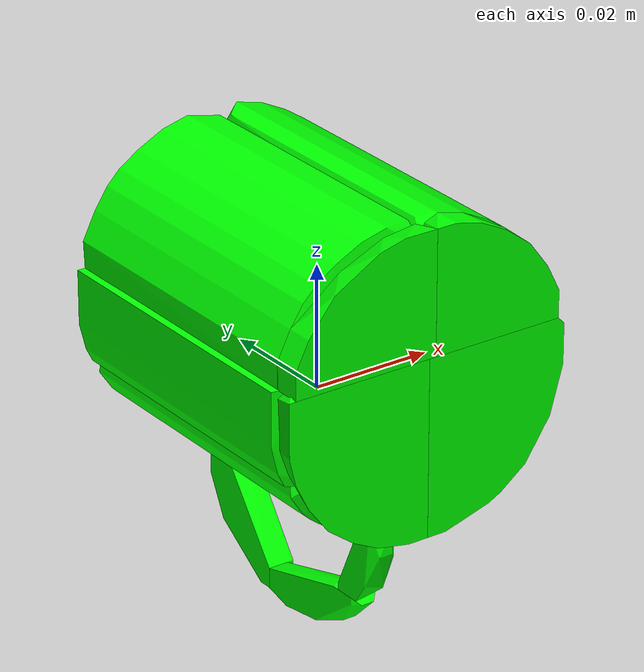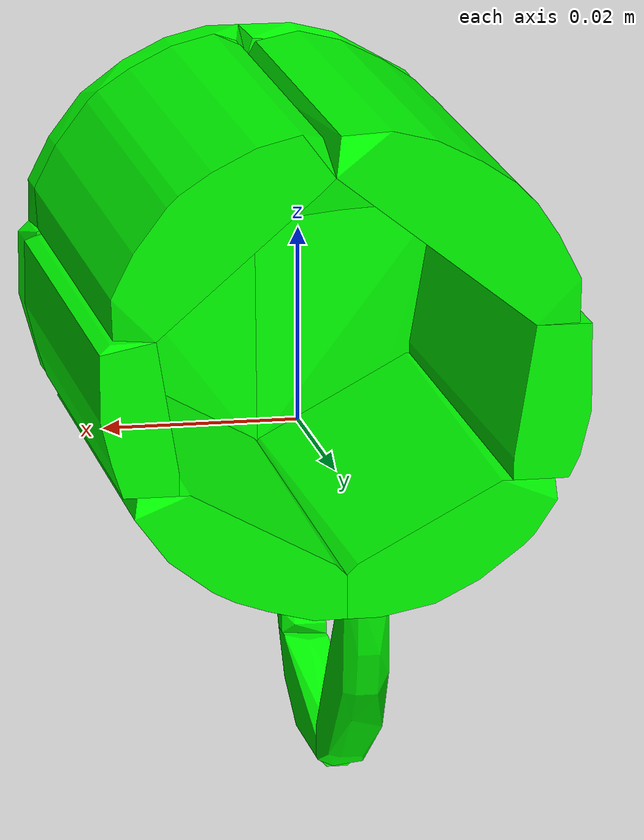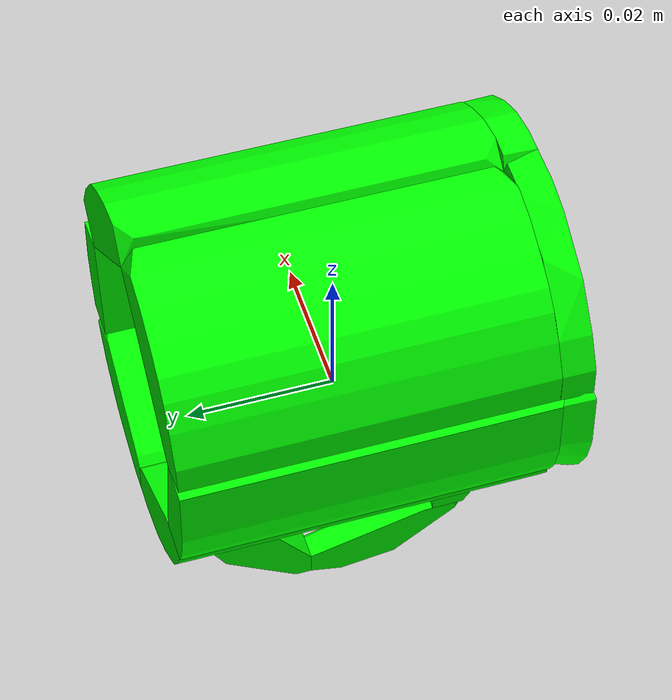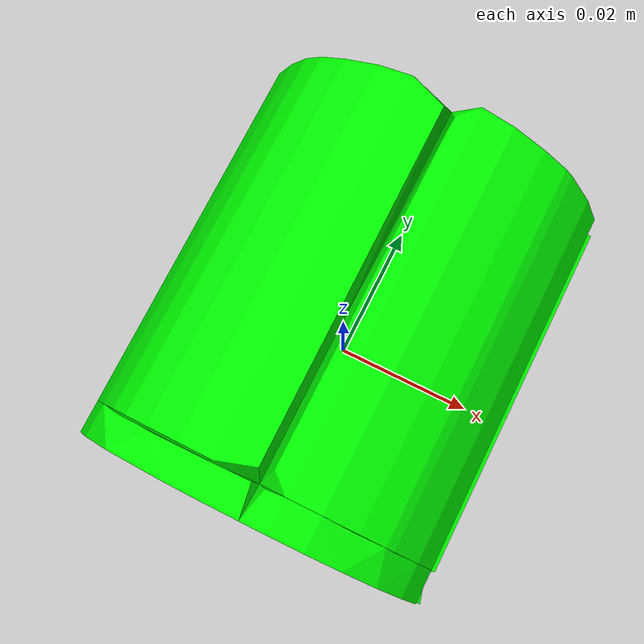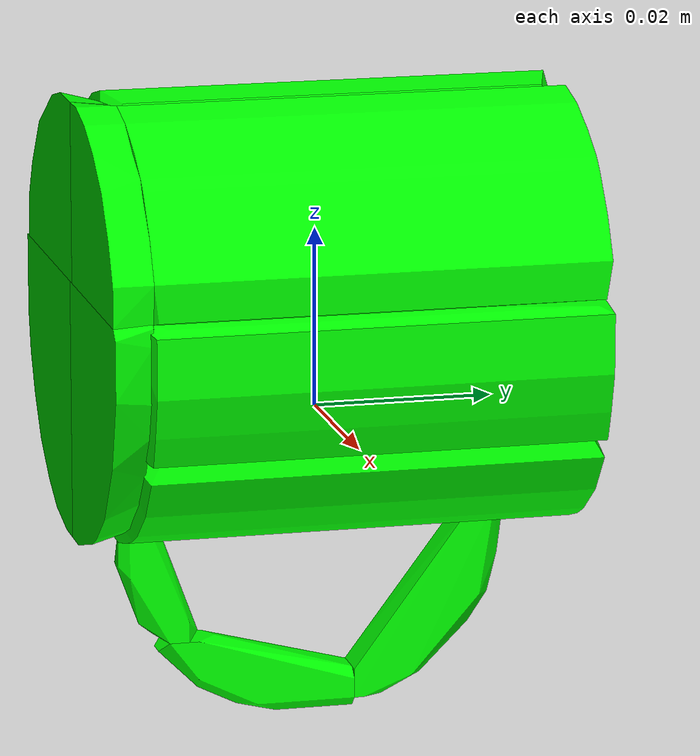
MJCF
<mujoco model="shapenet9-23">
  <asset>
    <mesh file="meshes/shapenet9-23/shapenet9-23_0.stl" name="shapenet9-23_0" scale="0.1 0.1 0.1"/>
    <mesh file="meshes/shapenet9-23/shapenet9-23_1.stl" name="shapenet9-23_1" scale="0.1 0.1 0.1"/>
    <mesh file="meshes/shapenet9-23/shapenet9-23_2.stl" name="shapenet9-23_2" scale="0.1 0.1 0.1"/>
    <mesh file="meshes/shapenet9-23/shapenet9-23_3.stl" name="shapenet9-23_3" scale="0.1 0.1 0.1"/>
    <mesh file="meshes/shapenet9-23/shapenet9-23_4.stl" name="shapenet9-23_4" scale="0.1 0.1 0.1"/>
    <mesh file="meshes/shapenet9-23/shapenet9-23_5.stl" name="shapenet9-23_5" scale="0.1 0.1 0.1"/>
    <mesh file="meshes/shapenet9-23/shapenet9-23_6.stl" name="shapenet9-23_6" scale="0.1 0.1 0.1"/>
    <mesh file="meshes/shapenet9-23/shapenet9-23_7.stl" name="shapenet9-23_7" scale="0.1 0.1 0.1"/>
    <mesh file="meshes/shapenet9-23/shapenet9-23_8.stl" name="shapenet9-23_8" scale="0.1 0.1 0.1"/>
    <mesh file="meshes/shapenet9-23/shapenet9-23_9.stl" name="shapenet9-23_9" scale="0.1 0.1 0.1"/>
    <mesh file="meshes/shapenet9-23/shapenet9-23_10.stl" name="shapenet9-23_10" scale="0.1 0.1 0.1"/>
    <mesh file="meshes/shapenet9-23/shapenet9-23_11.stl" name="shapenet9-23_11" scale="0.1 0.1 0.1"/>
    <mesh file="meshes/shapenet9-23/shapenet9-23_12.stl" name="shapenet9-23_12" scale="0.1 0.1 0.1"/>
  </asset>
  <worldbody>
    <body>
      <body name="collision">
        <geom pos="0 0 0" mesh="shapenet9-23_0" type="mesh" solimp="0.998 0.998 0.001" solref="0.001 1" density="100" friction="0.95 0.3 0.1" rgba="0 1 0 1" group="1" condim="4"/>
        <geom pos="0 0 0" mesh="shapenet9-23_1" type="mesh" solimp="0.998 0.998 0.001" solref="0.001 1" density="100" friction="0.95 0.3 0.1" rgba="0 1 0 1" group="1" condim="4"/>
        <geom pos="0 0 0" mesh="shapenet9-23_2" type="mesh" solimp="0.998 0.998 0.001" solref="0.001 1" density="100" friction="0.95 0.3 0.1" rgba="0 1 0 1" group="1" condim="4"/>
        <geom pos="0 0 0" mesh="shapenet9-23_3" type="mesh" solimp="0.998 0.998 0.001" solref="0.001 1" density="100" friction="0.95 0.3 0.1" rgba="0 1 0 1" group="1" condim="4"/>
        <geom pos="0 0 0" mesh="shapenet9-23_4" type="mesh" solimp="0.998 0.998 0.001" solref="0.001 1" density="100" friction="0.95 0.3 0.1" rgba="0 1 0 1" group="1" condim="4"/>
        <geom pos="0 0 0" mesh="shapenet9-23_5" type="mesh" solimp="0.998 0.998 0.001" solref="0.001 1" density="100" friction="0.95 0.3 0.1" rgba="0 1 0 1" group="1" condim="4"/>
        <geom pos="0 0 0" mesh="shapenet9-23_6" type="mesh" solimp="0.998 0.998 0.001" solref="0.001 1" density="100" friction="0.95 0.3 0.1" rgba="0 1 0 1" group="1" condim="4"/>
        <geom pos="0 0 0" mesh="shapenet9-23_7" type="mesh" solimp="0.998 0.998 0.001" solref="0.001 1" density="100" friction="0.95 0.3 0.1" rgba="0 1 0 1" group="1" condim="4"/>
        <geom pos="0 0 0" mesh="shapenet9-23_8" type="mesh" solimp="0.998 0.998 0.001" solref="0.001 1" density="100" friction="0.95 0.3 0.1" rgba="0 1 0 1" group="1" condim="4"/>
        <geom pos="0 0 0" mesh="shapenet9-23_9" type="mesh" solimp="0.998 0.998 0.001" solref="0.001 1" density="100" friction="0.95 0.3 0.1" rgba="0 1 0 1" group="1" condim="4"/>
        <geom pos="0 0 0" mesh="shapenet9-23_10" type="mesh" solimp="0.998 0.998 0.001" solref="0.001 1" density="100" friction="0.95 0.3 0.1" rgba="0 1 0 1" group="1" condim="4"/>
        <geom pos="0 0 0" mesh="shapenet9-23_11" type="mesh" solimp="0.998 0.998 0.001" solref="0.001 1" density="100" friction="0.95 0.3 0.1" rgba="0 1 0 1" group="1" condim="4"/>
        <geom pos="0 0 0" mesh="shapenet9-23_12" type="mesh" solimp="0.998 0.998 0.001" solref="0.001 1" density="100" friction="0.95 0.3 0.1" rgba="0 1 0 1" group="1" condim="4"/>
      </body>
      <body name="visual">
        <geom pos="0 0 0" mesh="shapenet9-23_0" type="mesh" rgba="0 1 0 1" conaffinity="0" contype="0" group="0" mass="0.0001"/>
        <geom pos="0 0 0" mesh="shapenet9-23_1" type="mesh" rgba="0 1 0 1" conaffinity="0" contype="0" group="0" mass="0.0001"/>
        <geom pos="0 0 0" mesh="shapenet9-23_2" type="mesh" rgba="0 1 0 1" conaffinity="0" contype="0" group="0" mass="0.0001"/>
        <geom pos="0 0 0" mesh="shapenet9-23_3" type="mesh" rgba="0 1 0 1" conaffinity="0" contype="0" group="0" mass="0.0001"/>
        <geom pos="0 0 0" mesh="shapenet9-23_4" type="mesh" rgba="0 1 0 1" conaffinity="0" contype="0" group="0" mass="0.0001"/>
        <geom pos="0 0 0" mesh="shapenet9-23_5" type="mesh" rgba="0 1 0 1" conaffinity="0" contype="0" group="0" mass="0.0001"/>
        <geom pos="0 0 0" mesh="shapenet9-23_6" type="mesh" rgba="0 1 0 1" conaffinity="0" contype="0" group="0" mass="0.0001"/>
        <geom pos="0 0 0" mesh="shapenet9-23_7" type="mesh" rgba="0 1 0 1" conaffinity="0" contype="0" group="0" mass="0.0001"/>
        <geom pos="0 0 0" mesh="shapenet9-23_8" type="mesh" rgba="0 1 0 1" conaffinity="0" contype="0" group="0" mass="0.0001"/>
        <geom pos="0 0 0" mesh="shapenet9-23_9" type="mesh" rgba="0 1 0 1" conaffinity="0" contype="0" group="0" mass="0.0001"/>
        <geom pos="0 0 0" mesh="shapenet9-23_10" type="mesh" rgba="0 1 0 1" conaffinity="0" contype="0" group="0" mass="0.0001"/>
        <geom pos="0 0 0" mesh="shapenet9-23_11" type="mesh" rgba="0 1 0 1" conaffinity="0" contype="0" group="0" mass="0.0001"/>
        <geom pos="0 0 0" mesh="shapenet9-23_12" type="mesh" rgba="0 1 0 1" conaffinity="0" contype="0" group="0" mass="0.0001"/>
      </body>
      <site rgba="0 0 0 0" size="0.005" pos="0 0 -0.06" name="bottom_site"/>
      <site rgba="0 0 0 0" size="0.005" pos="0 0 0.04" name="top_site"/>
      <site rgba="0 0 0 0" size="0.005" pos="0.025 0.025 0" name="horizontal_radius_site"/>
    </body>
  </worldbody>
</mujoco>
